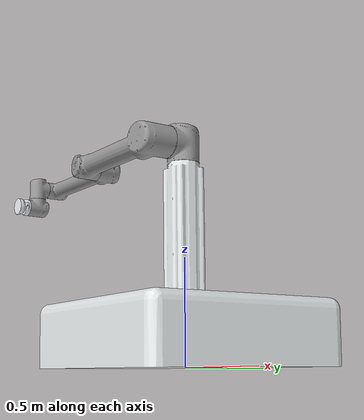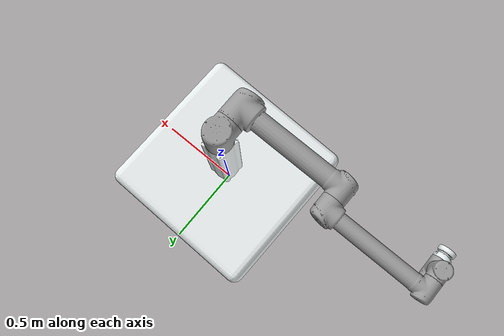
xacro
<?xml version="1.0"?>
<robot
  xmlns:xacro="http://www.ros.org/wiki/xacro"
  name="agriculture_robot">

  <link name="dummy_link" />

  <joint name="world_to_base_link=" type="fixed">
    <parent link="dummy_link" />
    <child link="base_link" />
  </joint>

  <link name="base_link">
    <inertial>
      <origin
        xyz="0.000953170793338206 -0.00203670125732843 0.168593368096125"
        rpy="0 0 0" />
      <mass
        value="310.25976377299" />
      <inertia
        ixx="29.9081981248055"
        ixy="-0.00129594543184555"
        ixz="0.108476388051515"
        iyy="29.9099493341021"
        iyz="-0.227771058411677"
        izz="49.0807739520924" />
    </inertial>
    <visual>
      <origin
        xyz="0 0 0"
        rpy="0 0 0" />
      <geometry>
        <mesh
          filename="package://agriculture_robot/meshes/base_link.STL" />
      </geometry>
      <material
        name="">
        <color
          rgba="0.901960784313726 0.92156862745098 0.92156862745098 1" />
      </material>
    </visual>
    <collision>
      <origin
        xyz="0 0 0"
        rpy="0 0 0" />
      <geometry>
        <mesh
          filename="package://agriculture_robot/meshes/base_link.STL" />
      </geometry>
    </collision>
  </link>
  <link name="shoulder_pan_link">
    <inertial>
      <origin
        xyz="4.37019309378567E-06 0.0820545660616732 -0.0116148718498792"
        rpy="0 0 0" />
      <mass
        value="3.07353667216991" />
      <inertia
        ixx="0.0114771266254552"
        ixy="-1.00712621246454E-06"
        ixz="2.439837371449E-07"
        iyy="0.0101197406986664"
        iyz="0.000858541665298787"
        izz="0.010716617811193" />
    </inertial>
    <visual>
      <origin
        xyz="0 0 0"
        rpy="0 0 0" />
      <geometry>
        <mesh
          filename="package://agriculture_robot/meshes/shoulder_pan_link.STL" />
      </geometry>
      <material
        name="">
        <color
          rgba="0.6 0.6 0.6 1" />
      </material>
    </visual>
    <collision>
      <origin
        xyz="0 0 0"
        rpy="0 0 0" />
      <geometry>
        <mesh
          filename="package://agriculture_robot/meshes/shoulder_pan_link.STL" />
      </geometry>
    </collision>
  </link>
  <joint
    name="shoulder_pan_joint"
    type="continuous">
    <origin
      xyz="0.00528419852307351 -0.0112018287746117 0.934339582068716"
      rpy="1.55880786742705 -0.005655077203969 -3.14155875526182" />
    <parent
      link="base_link" />
    <child
      link="shoulder_pan_link" />
    <axis
      xyz="0 1 0" />
  </joint>
  <link name="shoulder_lift_link">
    <inertial>
      <origin
        xyz="1.16933946955611E-05 0.251044070838087 -0.0842901331551335"
        rpy="0 0 0" />
      <mass
        value="8.7124476959073" />
      <inertia
        ixx="0.0965258571269439"
        ixy="-3.21349076909668E-06"
        ixz="-6.74404618236147E-06"
        iyy="0.0199171763170117"
        iyz="0.000589174270435517"
        izz="0.0949167945372024" />
    </inertial>
    <visual>
      <origin
        xyz="0 0 0"
        rpy="0 0 0" />
      <geometry>
        <mesh
          filename="package://agriculture_robot/meshes/shoulder_lift_link.STL" />
      </geometry>
      <material
        name="">
        <color
          rgba="0.6 0.6 0.6 1" />
      </material>
    </visual>
    <collision>
      <origin
        xyz="0 0 0"
        rpy="0 0 0" />
      <geometry>
        <mesh
          filename="package://agriculture_robot/meshes/shoulder_lift_link.STL" />
      </geometry>
    </collision>
  </link>
  <joint
    name="shoulder_lift_joint"
    type="continuous">
    <origin
      xyz="0 0.0935783294773769 -0.086046820325919"
      rpy="0 0 -1.57645160719242" />
    <parent
      link="shoulder_pan_link" />
    <child
      link="shoulder_lift_link" />
    <axis
      xyz="0 0 1" />
  </joint>
  <link name="elbow_link">
    <inertial>
      <origin
        xyz="-1.60157378220616E-06 0.256925332824293 0.0346321212762525"
        rpy="0 0 0" />
      <mass
        value="4.65345497822593" />
      <inertia
        ixx="0.0517126806952898"
        ixy="8.92615579126016E-07"
        ixz="4.29343324349291E-07"
        iyy="0.00595526327510539"
        iyz="-0.000130413122823636"
        izz="0.0514235542189657" />
    </inertial>
    <visual>
      <origin
        xyz="0 0 0"
        rpy="0 0 0" />
      <geometry>
        <mesh
          filename="package://agriculture_robot/meshes/elbow_link.STL" />
      </geometry>
      <material
        name="">
        <color
          rgba="0.6 0.6 0.6 1" />
      </material>
    </visual>
    <collision>
      <origin
        xyz="0 0 0"
        rpy="0 0 0" />
      <geometry>
        <mesh
          filename="package://agriculture_robot/meshes/elbow_link.STL" />
      </geometry>
    </collision>
  </link>
  <joint
    name="elbow_joint"
    type="continuous">
    <origin
      xyz="0.00107827947605443 0.612900000000001 -1.29273222843895E-05"
      rpy="0 0.0119882676643175 0" />
    <parent
      link="shoulder_lift_link" />
    <child
      link="elbow_link" />
    <axis
      xyz="0 0 1" />
  </joint>
  <link name="wrist_1_link">
    <inertial>
      <origin
        xyz="2.93983398536035E-06 0.00973732559422373 -0.0702342359729779"
        rpy="0 0 0" />
      <mass
        value="0.728501747245164" />
      <inertia
        ixx="0.0011150413189406"
        ixy="7.55500394224803E-08"
        ixz="-3.46074446105096E-08"
        iyy="0.000883755392536439"
        iyz="9.07969328947864E-05"
        izz="0.00103094367512972" />
    </inertial>
    <visual>
      <origin
        xyz="0 0 0"
        rpy="0 0 0" />
      <geometry>
        <mesh
          filename="package://agriculture_robot/meshes/wrist_1_link.STL" />
      </geometry>
      <material
        name="">
        <color
          rgba="0.6 0.6 0.6 1" />
      </material>
    </visual>
    <collision>
      <origin
        xyz="0 0 0"
        rpy="0 0 0" />
      <geometry>
        <mesh
          filename="package://agriculture_robot/meshes/wrist_1_link.STL" />
      </geometry>
    </collision>
  </link>
  <joint
    name="wrist_1_joint"
    type="continuous">
    <origin
      xyz="0 0.571599999999999 0"
      rpy="0 0 -1.5707963267949" />
    <parent
      link="elbow_link" />
    <child
      link="wrist_1_link" />
    <axis
      xyz="0 0 1" />
  </joint>
  <link name="wrist_2_link">
    <inertial>
      <origin
        xyz="-3.41592482211439E-06 0.108096484310984 -0.00973740152501074"
        rpy="0 0 0" />
      <mass
        value="0.728503579499185" />
      <inertia
        ixx="0.00111505314792338"
        ixy="-3.15150519800801E-08"
        ixz="7.9376823661956E-08"
        iyy="0.00103092830975253"
        iyz="9.07958131149968E-05"
        izz="0.000883753404950502" />
    </inertial>
    <visual>
      <origin
        xyz="0 0 0"
        rpy="0 0 0" />
      <geometry>
        <mesh
          filename="package://agriculture_robot/meshes/wrist_2_link.STL" />
      </geometry>
      <material
        name="">
        <color
          rgba="0.6 0.6 0.6 1" />
      </material>
    </visual>
    <collision>
      <origin
        xyz="0 0 0"
        rpy="0 0 0" />
      <geometry>
        <mesh
          filename="package://agriculture_robot/meshes/wrist_2_link.STL" />
      </geometry>
    </collision>
  </link>
  <joint
    name="wrist_2_joint"
    type="continuous">
    <origin
      xyz="0 0 -0.077837426320686"
      rpy="0 -3.38977859430351E-05 0" />
    <parent
      link="wrist_1_link" />
    <child
      link="wrist_2_link" />
    <axis
      xyz="0 1 0" />
  </joint>
  <link name="wrist_3_link">
    <inertial>
      <origin
        xyz="-1.80806338234696E-08 -0.00094943152172311 -0.0132195267894431"
        rpy="0 0 0" />
      <mass
        value="0.159236553781319" />
      <inertia
        ixx="8.19108670774833E-05"
        ixy="-2.93851703681572E-11"
        ixz="-3.00602794689126E-11"
        iyy="8.7758343925284E-05"
        iyz="-4.72730714495279E-07"
        izz="0.000149632357255088" />
    </inertial>
    <visual>
      <origin
        xyz="0 0 0"
        rpy="0 0 0" />
      <geometry>
        <mesh
          filename="package://agriculture_robot/meshes/wrist_3_link.STL" />
      </geometry>
      <material
        name="">
        <color
          rgba="0.901960784313726 0.92156862745098 0.92156862745098 1" />
      </material>
    </visual>
    <collision>
      <origin
        xyz="0 0 0"
        rpy="0 0 0" />
      <geometry>
        <mesh
          filename="package://agriculture_robot/meshes/wrist_3_link.STL" />
      </geometry>
    </collision>
  </link>
  <joint
    name="wrist_3_joint"
    type="continuous">
    <origin
      xyz="0 0.1157 -0.0615194007436403"
      rpy="0 0 -1.74664209728874" />
    <parent
      link="wrist_2_link" />
    <child
      link="wrist_3_link" />
    <axis
      xyz="0 0 1" />
  </joint>
  <link name="gripper_link">
    <inertial>
      <origin
        xyz="-1.8147875202601E-08 1.4270505677591 -0.238629638011718"
        rpy="0 0 0" />
      <mass
        value="0.159236554932234" />
      <inertia
        ixx="8.19108710165267E-05"
        ixy="-2.89486501312214E-11"
        ixz="-3.01543968163048E-11"
        iyy="8.77583438479366E-05"
        iyz="-4.72731114706349E-07"
        izz="0.000149632361112369" />
    </inertial>
    <visual>
      <origin
        xyz="0 0 0"
        rpy="0 0 0" />
      <geometry>
        <mesh
          filename="package://agriculture_robot/meshes/gripper_link.STL" />
      </geometry>
      <material
        name="">
        <color
          rgba="0.901960784313726 0.92156862745098 0.92156862745098 1" />
      </material>
    </visual>
    <collision>
      <origin
        xyz="0 0 0"
        rpy="0 0 0" />
      <geometry>
        <mesh
          filename="package://agriculture_robot/meshes/gripper_link.STL" />
      </geometry>
    </collision>
  </link>
  <joint
    name="gripper_joint"
    type="fixed">
    <origin
      xyz="1.37545783040745 0.383796504375487 -0.286771309793904"
      rpy="3.14159265358979 0 -1.29868564046961" />
    <parent
      link="wrist_3_link" />
    <child
      link="gripper_link" />
    <axis
      xyz="0 0 0" />
  </joint>

  <link name="camera_link"> </link>

  <joint name="camera_joint" type="fixed">
    <origin xyz="0.05 0 0" rpy="0 0 0" />
    <parent link="gripper_link" />
    <child link="camera_link" />
  </joint>

  <ros2_control name="GazeboSystem" type="system">
    <hardware>
      <plugin>gazebo_ros2_control/GazeboSystem</plugin>
    </hardware>

    <joint name="shoulder_pan_joint">
      <command_interface name="position">
        <param name="min">-6.2832</param>
        <param name="max">6.2832</param>
      </command_interface>
      <state_interface name="position" />
      <state_interface name="velocity" />
      <state_interface name="effort" />
    </joint>

    <joint name="shoulder_lift_joint">
      <command_interface name="position">
        <param name="min">-6.2832</param>
        <param name="max">6.2832</param>
      </command_interface>
      <state_interface name="position" />
      <state_interface name="velocity" />
      <state_interface name="effort" />
    </joint>

    <joint name="elbow_joint">
      <command_interface name="position">
        <param name="min">-2.7925</param>
        <param name="max">2.7925</param>
      </command_interface>
      <state_interface name="position" />
      <state_interface name="velocity" />
      <state_interface name="effort" />
    </joint>

    <joint name="wrist_1_joint">
      <command_interface name="position">
        <param name="min">-6.2832</param>
        <param name="max">6.2832</param>
      </command_interface>
      <state_interface name="position" />
      <state_interface name="velocity" />
      <state_interface name="effort" />
    </joint>

    <joint name="wrist_2_joint">
      <command_interface name="position">
        <param name="min">-6.2832</param>
        <param name="max">6.2832</param>
      </command_interface>
      <state_interface name="position" />
      <state_interface name="velocity" />
      <state_interface name="effort" />
    </joint>

    <joint name="wrist_3_joint">
      <command_interface name="position">
        <param name="min">-6.2832</param>
        <param name="max">6.2832</param>
      </command_interface>
      <state_interface name="position" />
      <state_interface name="velocity" />
      <state_interface name="effort" />
    </joint>

    <joint name="shoulder_pan_joint">
      <command_interface name="velocity">
        <param name="min">-1000.0</param>
        <param name="max">1000.0</param>
      </command_interface>
      <state_interface name="position" />
      <state_interface name="velocity" />
    </joint>

    <joint name="shoulder_lift_joint">
      <command_interface name="velocity">
        <param name="min">-1000.0</param>
        <param name="max">1000.0</param>
      </command_interface>
      <state_interface name="position" />
      <state_interface name="velocity" />
    </joint>

    <joint name="elbow_joint">
      <command_interface name="velocity">
        <param name="min">-1000.0</param>
        <param name="max">1000.0</param>
      </command_interface>
      <state_interface name="position" />
      <state_interface name="velocity" />
    </joint>

    <joint name="wrist_1_joint">
      <command_interface name="velocity">
        <param name="min">-1000.0</param>
        <param name="max">1000.0</param>
      </command_interface>
      <state_interface name="position" />
      <state_interface name="velocity" />
    </joint>

    <joint name="wrist_2_joint">
      <command_interface name="velocity">
        <param name="min">-1000.0</param>
        <param name="max">1000.0</param>
      </command_interface>
      <state_interface name="position" />
      <state_interface name="velocity" />
    </joint>

    <joint name="wrist_3_joint">
      <command_interface name="velocity">
        <param name="min">-1000.0</param>
        <param name="max">1000.0</param>
      </command_interface>
      <state_interface name="position" />
      <state_interface name="velocity" />
    </joint>

  </ros2_control>

  <gazebo>
    <plugin name="gazebo_ros2_control" filename="libgazebo_ros2_control.so">
      <robot_sim_type>gazebo_ros2_control/GazeboSystem</robot_sim_type>
      <parameters>$(find agriculture_robot)/config/control.yaml</parameters>
    </plugin>
  </gazebo>

  <gazebo>
    <plugin name='vacuum_gripper' filename='libgazebo_ros_vacuum_gripper.so'>
      <!-- This part can be commented out if not required -->
      <ros>
        <!-- Add a namespace -->
        <namespace>/warehouse_gripper</namespace>
        <!-- Remapping service and topic names -->
        <remapping>switch:=custom_switch</remapping>
        <remapping>grasping:=custom_grasping</remapping>
      </ros>
      <!-- Link associated with gripper -->
      <link_name>wrist_3_link</link_name>
      <!-- Max distance to attract entities -->
      <max_distance>0.2</max_distance>
      <!-- List of entities to be not attracted by the gripper -->
      <fixed>ground_plane</fixed>
      <fixed>wall</fixed>
    </plugin>
  </gazebo>

  <gazebo>
    <plugin filename="libodometry_plugin.so" name="odometry_plugin">
      <!-- Name of the link for which the odometry is required -->
      <frame>wrist_3_link</frame>
      <!-- Any arbitray name for the world frame -->
      <world_frame>odom_world_frame</world_frame>
    </plugin>
  </gazebo>

</robot>
